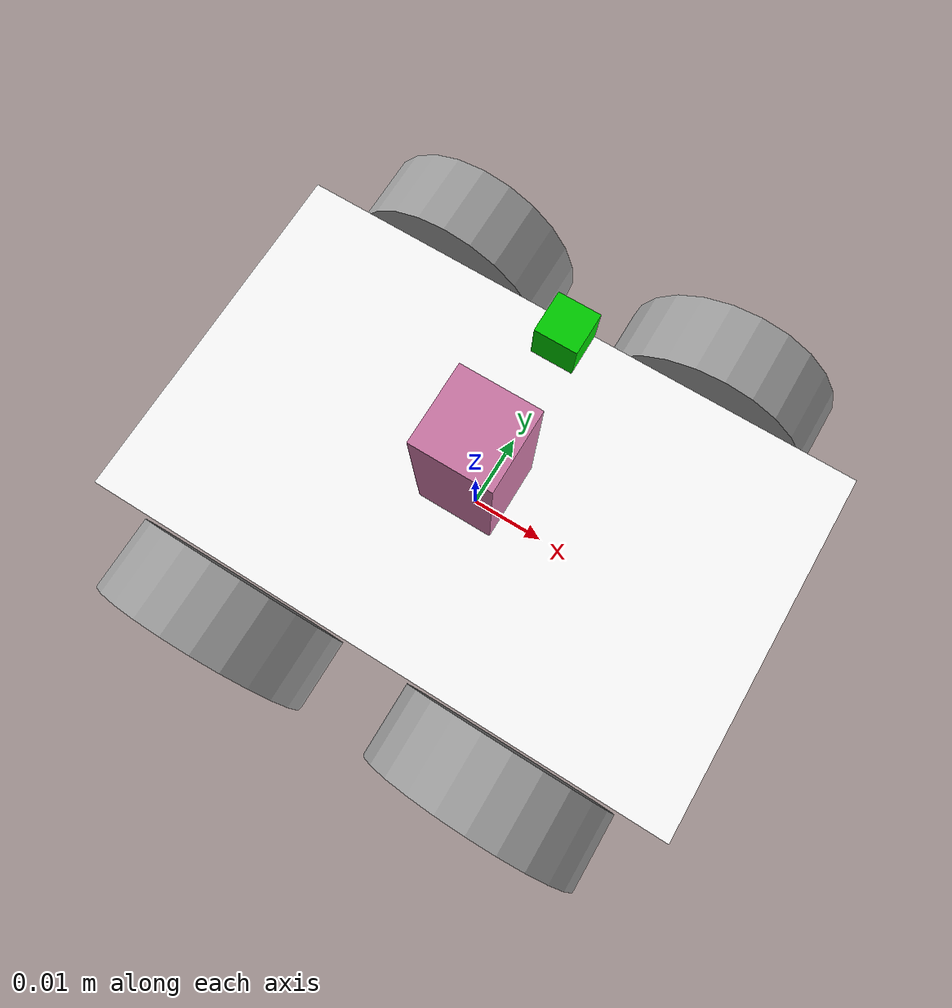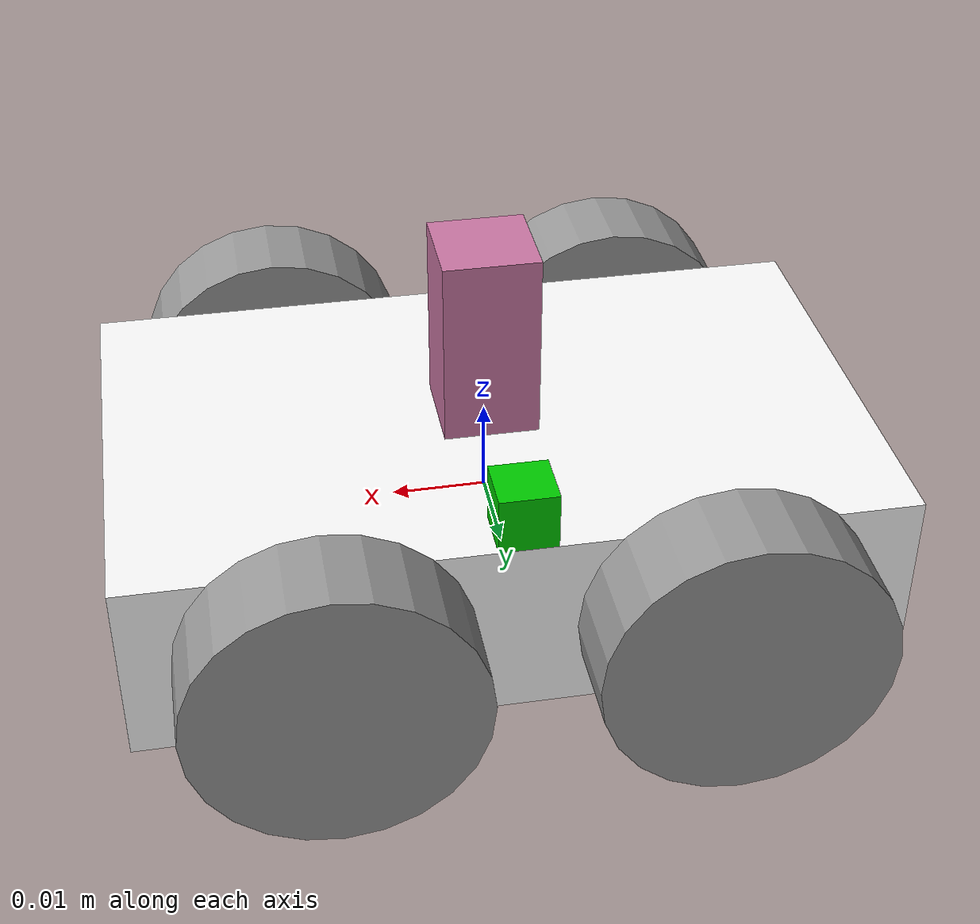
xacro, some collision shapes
<?xml version='1.0'?>

<robot name="myrobot" xmlns:xacro="http://www.ros.org/wiki/xacro">

  <xacro:property name="cameraSize" value="0.006"/>
  <xacro:property name="cameraMass" value="0.01"/>

  <xacro:include filename="$(find mybot_description)/urdf/mybot.gazebo" />
  <xacro:include filename="$(find mybot_description)/urdf/materials.xacro" />
  <xacro:include filename="$(find mybot_description)/urdf/macros.xacro" />

   <xacro:macro name="box_inertia" params="m x y z">
        <inertial>
		<origin xyz="0.0 0.0 0.1" rpy=" 0 0 0"/>
                <mass value="${m}" />
                <inertia  ixx="${m*(y*y+z*z)/12}" ixy = "0" ixz = "0"
      			  iyy="${m*(x*x+z*z)/12}" iyz = "0"
     			  izz="${m*(x*x+z*z)/12}"/>
        </inertial>
   </xacro:macro>

   <xacro:macro name="cylinder_inertia" params="m r h">
        <inertial>
		<origin xyz="0 0 0" rpy="0 1.5707 1.5707"/>
                <mass value="${m}" />
                <inertia  ixx="${m*(3*r*r+h*h)/12}" ixy = "0" ixz = "0"
    			  iyy="${m*(3*r*r+h*h)/12}" iyz = "0"
    			  izz="${m*r*r/2}"/>
        </inertial>
   </xacro:macro>

   <xacro:macro name="sphere_inertia" params="m x y z">
        <inertial>
                <mass value="${m}" />
                <inertia  ixx="${2*m*r*r/5}" ixy = "0" ixz = "0"
   			  iyy="${2*m*r*r/5}" iyz = "0"
     			  izz="${2*m*r*r/5}"/>
        </inertial>
   </xacro:macro>

<!--XXXXXXXXXXXXXXXXXXXXXXXXXXXXXXXXXXXXXXXXXXXXXXXXXXXXXXXXXXXXXXXXXXXXXXXXXXXXXXXXXXXXXXXXXXX-->

  <link name="chassis">
        <pose>0 0 0.2 0 0 0</pose>

     	<xacro:box_inertia m="1.0" x="0.1" y="0.05" z="0.02"/>

        <visual name="chassis_visual">
            <origin xyz="0.0 0.0 0.0" rpy="0.0 0.0 0.0"/>
            <geometry>
                <box size="0.08 0.049 0.02"/>
            </geometry>
            <material name="white"/>
        </visual>

        <collision name='collision'>
            <geometry>
                <box size="0.08 0.049 0.02"/>
            </geometry>
        </collision>

    </link>

    <link name="left_front_wheel">

        <collision name="collision">
            <origin xyz="0 0 0" rpy="0 1.5707 1.5707"/>
            <geometry>
                <cylinder radius="0.015" length="0.01"/>
            </geometry>
        </collision>

        <visual name="left_front_wheel_visual">
            <origin xyz="0 0 0" rpy="0 1.5707 1.5707"/>
            <geometry>
                <cylinder radius="0.015" length="0.01"/>
            </geometry>
        </visual>

        <xacro:cylinder_inertia m="0.2" r="0.015" h="0.01"/>
    </link>

    <link name="left_back_wheel">

        <collision name="collision">
            <origin xyz="0 0 0" rpy="0 1.5707 1.5707"/>
            <geometry>
                <cylinder radius="0.015" length="0.01"/>
            </geometry>
        </collision>

        <visual name="left_back_wheel_visual">
            <origin xyz="0 0 0" rpy="0 1.5707 1.5707"/>
            <geometry>
                <cylinder radius="0.015" length="0.01"/>
            </geometry>
        </visual>

        <xacro:cylinder_inertia m="0.2" r="0.015" h="0.01"/>
    </link>

    <link name="right_front_wheel">

        <collision name="collision">
            <origin xyz="0 0 0" rpy="0 1.5707 1.5707"/>
            <geometry>
                <cylinder radius="0.015" length="0.01"/>
            </geometry>
        </collision>

        <visual name="right_front_wheel_visual">
            <origin xyz="0 0 0" rpy="0 1.5707 1.5707"/>
            <geometry>
                <cylinder radius="0.015" length="0.01"/>
            </geometry>
        </visual>

        <xacro:cylinder_inertia m="0.2" r="0.015" h="0.01"/>
    </link>

    <link name="right_back_wheel">

        <collision name="collision">
            <origin xyz="0 0 0" rpy="0 1.5707 1.5707"/>
            <geometry>
                <cylinder radius="0.015" length="0.01"/>
            </geometry>
        </collision>

        <visual name="right_back_wheel_visual">
            <origin xyz="0 0 0" rpy="0 1.5707 1.5707"/>
            <geometry>
                <cylinder radius="0.015" length="0.01"/>
            </geometry>
        </visual>

        <xacro:cylinder_inertia m="0.2" r="0.015" h="0.01"/>
    </link>

    <joint type="continuous" name="left_front_wheel_joint">
        <origin xyz="0.02 0.03 0.0" rpy="0 0 0"/>
        <child link="left_front_wheel"/>
        <parent link="chassis"/>
        <axis xyz="0 1 0" rpy="0 0 0"/>
        <limit effort="100" velocity="100"/>
        <joint_properties damping="1.0" friction="0.0"/>
    </joint>

    <joint type="continuous" name="left_back_wheel_joint">
        <origin xyz="-0.02 0.03 0.0" rpy="0 0 0"/>
        <child link="left_back_wheel"/>
        <parent link="chassis"/>
        <axis xyz="0 1 0" rpy="0 0 0"/>
        <limit effort="100" velocity="100"/>
        <joint_properties damping="1.0" friction="0.0"/>
    </joint>

    <joint type="continuous" name="right_front_wheel_joint">
        <origin xyz="0.02 -0.03 0.0" rpy="0 0 0"/>
        <child link="right_front_wheel"/>
        <parent link="chassis"/>
        <axis xyz="0 1 0" rpy="0 0 0"/>
        <limit effort="100" velocity="100"/>
        <joint_properties damping="1.0" friction="0.0"/>
    </joint>

    <joint type="continuous" name="right_back_wheel_joint">
        <origin xyz="-0.02 -0.03 0.0" rpy="0 0 0"/>
        <child link="right_back_wheel"/>
        <parent link="chassis"/>
        <axis xyz="0 1 0" rpy="0 0 0"/>
        <limit effort="100" velocity="100"/>
        <joint_properties damping="1.0" friction="0.0"/>
    </joint>

  <link name="camera">
    <collision>
      <origin xyz="0 0 0" rpy="0 0 0"/>
      <geometry>
        <box size="${cameraSize} ${cameraSize} ${cameraSize}"/>
      </geometry>
    </collision>

    <visual>
      <origin xyz="0 0 0" rpy="0 0 0"/>
      <geometry>
        <box size="${cameraSize} ${cameraSize} ${cameraSize}"/>
      </geometry>
      <material name="green"/>
    </visual>

    <inertial>
      <mass value="${cameraMass}" />
      <origin xyz="0 0 0" rpy="0 0 0"/>
      <box_inertia m="${cameraMass}" x="${cameraSize}" y="${cameraSize}" z="${cameraSize}" />
      <inertia ixx="0.1" ixy="0" ixz="0" iyy="0.1" iyz="0" izz="0.1" />
    </inertial>
  </link>

  <joint name="camera_joint" type="fixed">
    <axis xyz="0 1 0" />
    <origin xyz="0 0.0215 0.013" rpy="0 0 1.570796"/>
    <parent link="chassis"/>
    <child link="camera"/>
  </joint>

  <joint name="hokuyo_joint" type="fixed">
    <axis xyz="0 1 0" />
    <origin xyz="0 0 0.02" rpy="0 0 0"/>
    <parent link="chassis"/>
    <child link="hokuyo"/>
  </joint>

  <!-- Hokuyo Laser -->
  <link name="hokuyo">
    <collision>
      <origin xyz="0 0 0" rpy="0 0 0"/>
      <geometry>
    <box size="0.01 0.01 0.02"/>
      </geometry>
    </collision>

    <visual>
      <origin xyz="0 0 0" rpy="0 0 0"/>
      <geometry>
        <mesh filename="package://mybot_description/meshes/hokuyo.dae" scale="0.3 0.3 0.3"/>
      </geometry>
    </visual>

    <inertial>
      <mass value="0.05" />
      <origin xyz="0 0 0" rpy="0 0 0"/>
      <inertia ixx="0.1" ixy="0" ixz="0" iyy="0.1" iyz="0" izz="0.1" />
    </inertial>
  </link>

</robot>

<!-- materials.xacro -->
<robot>

  <material name="black">
    <color rgba="0.0 0.0 0.0 1.0"/>
  </material>

  <material name="blue">
    <color rgba="0.0 0.4 0.9 1.0"/>
  </material>

  <material name="green">
    <color rgba="0.0 0.8 0.0 1.0"/>
  </material>

  <material name="grey">
    <color rgba="0.2 0.2 0.2 1.0"/>
  </material>

  <material name="orange">
    <color rgba="${255/255} ${108/255} ${10/255} 1.0"/>
  </material>

  <material name="brown">
    <color rgba="${222/255} ${207/255} ${195/255} 1.0"/>
  </material>

  <material name="red">
    <color rgba="0.8 0.0 0.0 1.0"/>
  </material>

  <material name="white">
    <color rgba="1.0 1.0 1.0 1.0"/>
  </material>

</robot>
